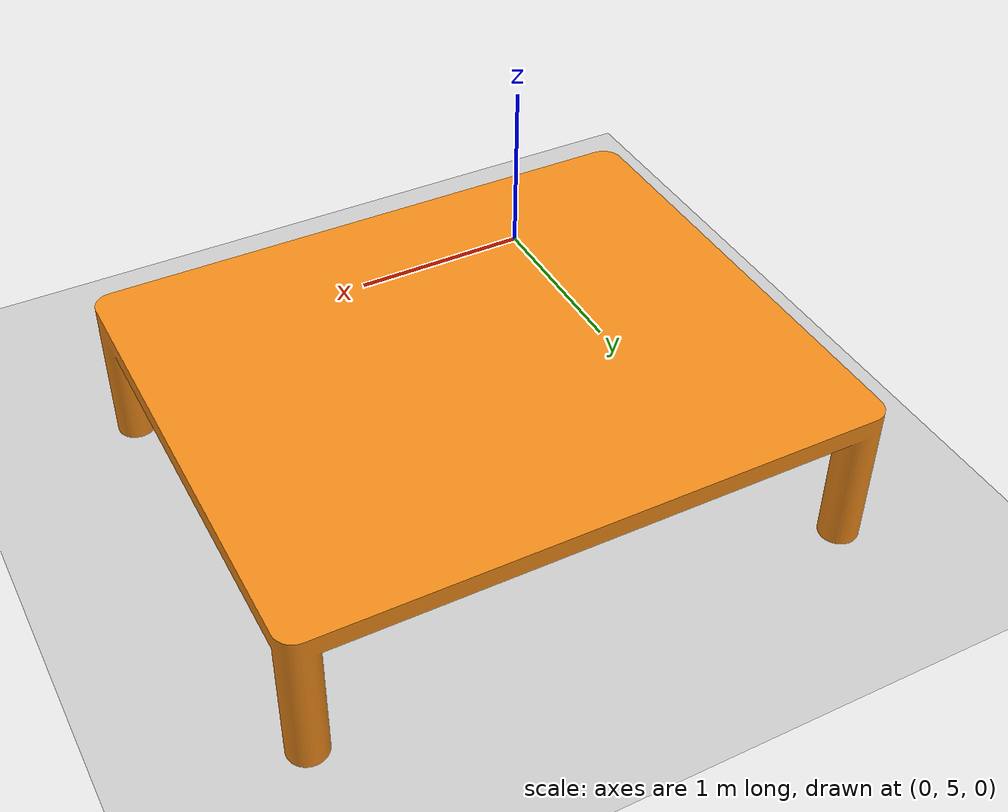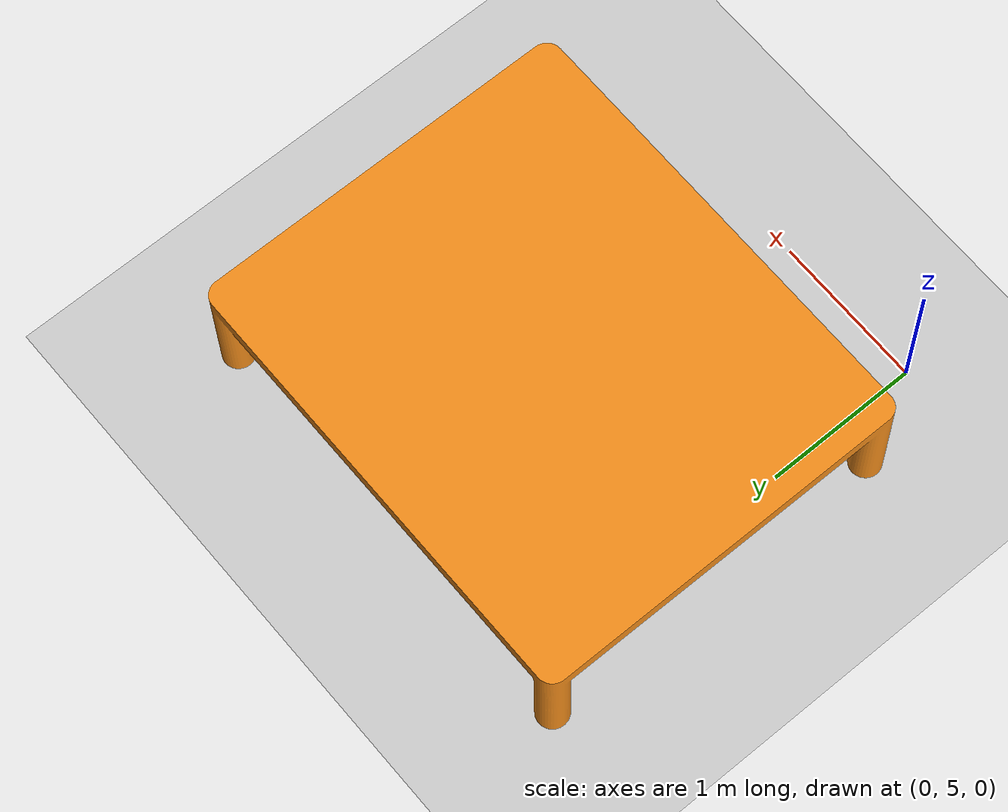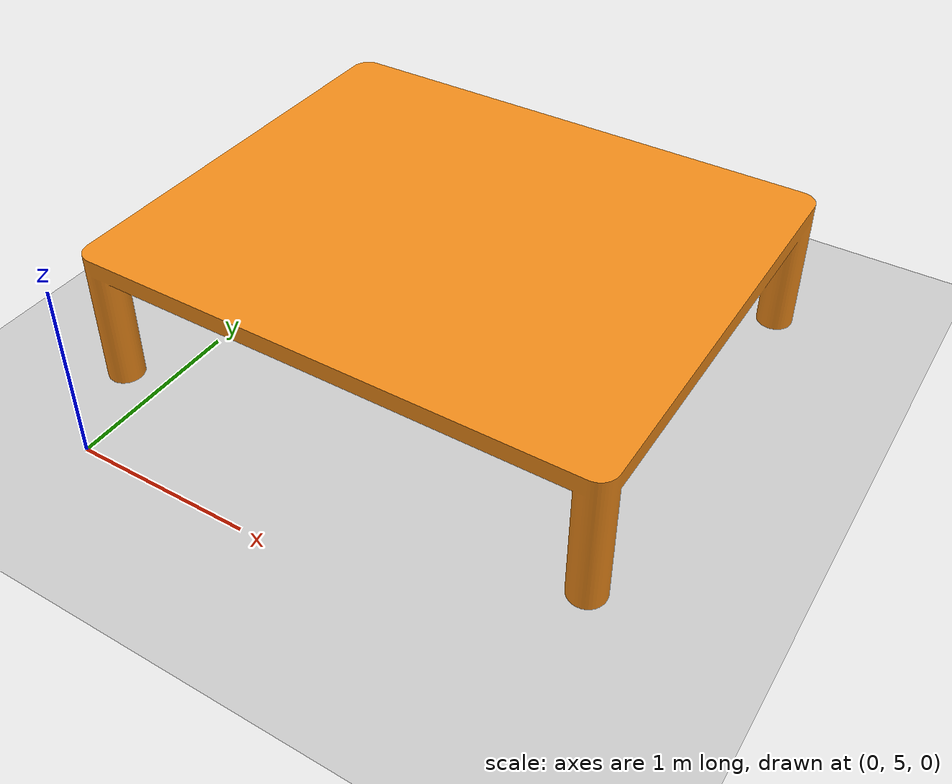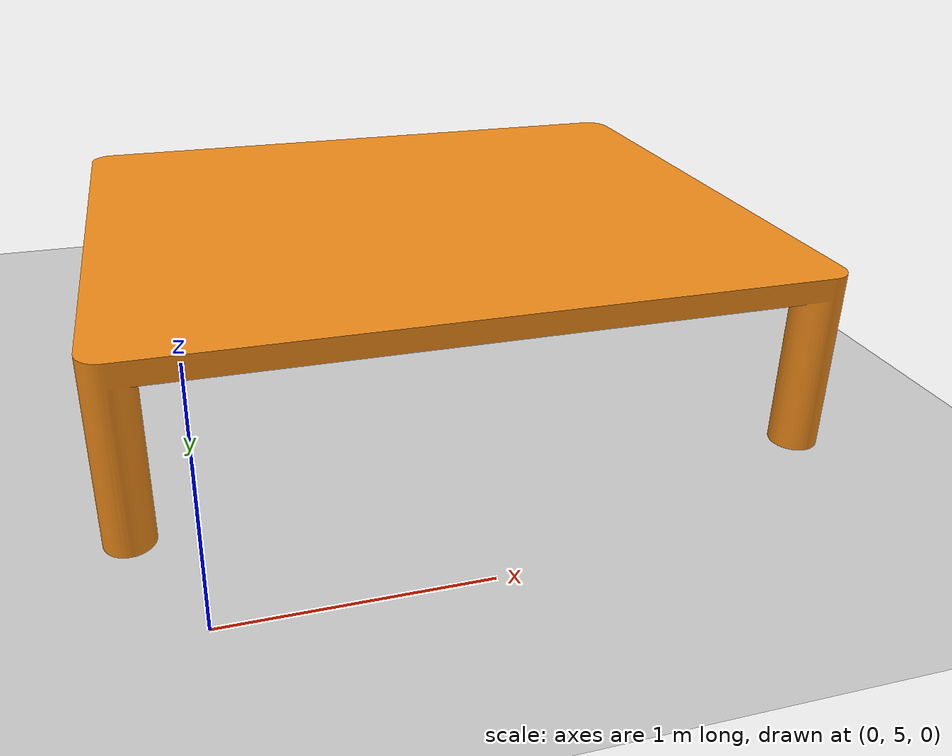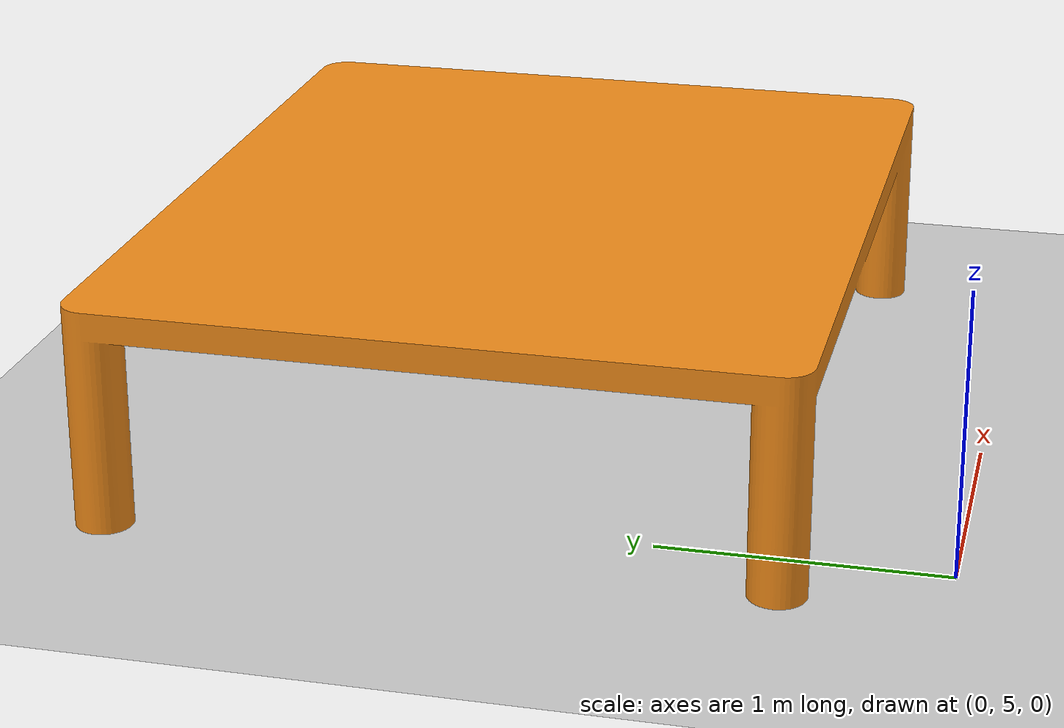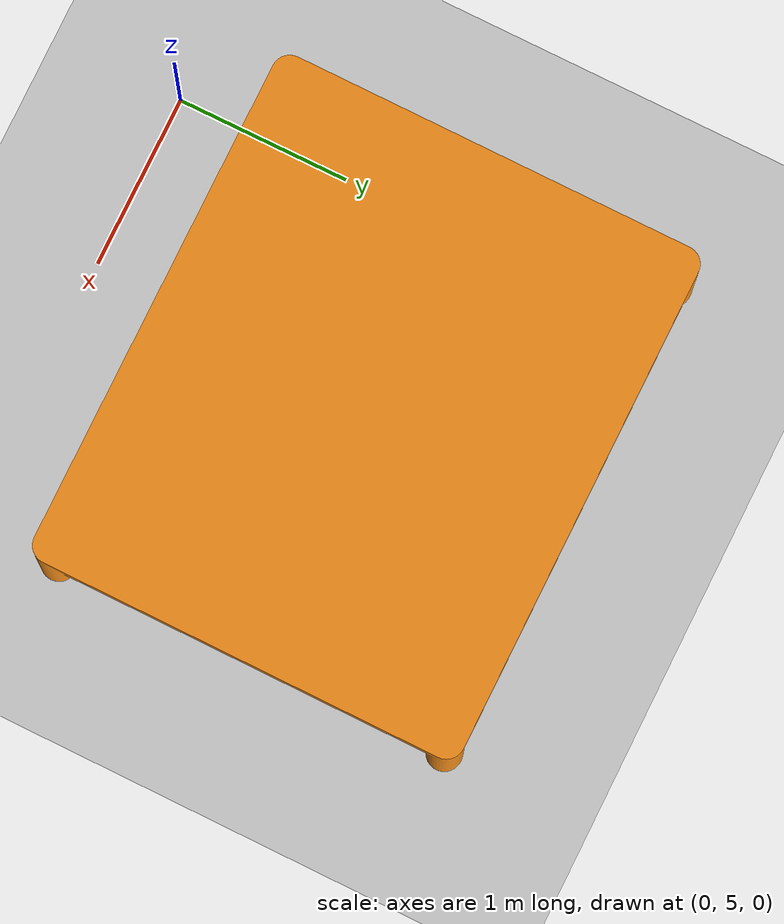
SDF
<sdf version="1.4">
 <world name="default">
  <light name="sun" type="directional">
   <pose>0 0 10 0 -0 0</pose>
   <diffuse>0.8 0.8 0.8 1</diffuse>
   <specular>0.2 0.2 0.2 1</specular>
   <attenuation>
    <range>1000</range>
    <constant>0.9</constant>
    <linear>0.01</linear>
    <quadratic>0.001</quadratic>
   </attenuation>
   <direction>-0.5 0.1 -0.9</direction>
  </light>
  <model name="ground_plane">
   <static>1</static>
   <link name="link">
    <collision name="collision">
     <geometry><plane><normal>0 0 1</normal><size>100 100</size></plane></geometry>
     <surface><friction><ode><mu>100</mu><mu2>50</mu2></ode></friction></surface>
    </collision>
    <visual name="visual">
     <cast_shadows>0</cast_shadows>
     <geometry><plane><normal>0 0 1</normal><size>100 100</size></plane></geometry>
     <material>
      <script><uri>file://media/materials/scripts/gazebo.material</uri><name>Gazebo/Grey</name></script>
     </material>
    </visual>
    <velocity_decay><linear>0</linear><angular>0</angular></velocity_decay>
   </link>
  </model>
  <physics type="ode">
   <max_step_size>0.001</max_step_size>
   <real_time_factor>1</real_time_factor>
   <real_time_update_rate>1000</real_time_update_rate>
   <gravity>0 0 -9.8</gravity>
  </physics>
  <scene><ambient>0.4 0.4 0.4 1</ambient><background>0.7 0.7 0.7 1</background><shadows>1</shadows></scene>
  <spherical_coordinates>
   <surface_model>EARTH_WGS84</surface_model>
   <latitude_deg>0</latitude_deg>
   <longitude_deg>0</longitude_deg>
   <elevation>0</elevation>
   <heading_deg>0</heading_deg>
  </spherical_coordinates>
  <model name="Part3">
   <link name="Part3">
    <inertial>
     <pose>1.5 -0.70814 1.25 0 -0 0</pose>
     <mass>133.86</mass>
     <inertia>
      <ixx>83.529</ixx>
      <ixy>0.00033768</ixy>
      <ixz>-0.000166552</ixz>
      <iyy>198.036</iyy>
      <iyz>0.000107991</iyz>
      <izz>119.865</izz>
     </inertia>
    </inertial>
    <collision name="Part3_collision">
     <pose>0 0 0 1.5708 -0 0</pose>
     <geometry><mesh><scale>1 1 1</scale><uri>/home/anand/new_ws/src/robo/meshes/Part3.STL</uri></mesh></geometry>
    </collision>
    <visual name="Part3_visual">
     <pose>0 0 0 1.5708 -0 0</pose>
     <geometry><mesh><scale>1 1 1</scale><uri>/home/anand/new_ws/src/robo/meshes/Part3.STL</uri></mesh></geometry>
     <material><script><name>Gazebo/Orange</name><uri>__default__</uri></script></material>
    </visual>
    <velocity_decay><linear>0</linear><angular>0</angular></velocity_decay>
   </link>
   <pose>-0.352719 5.44778 2e-06 -1.57081 -4e-06 -0.00205</pose>
   <static>0</static>
  </model>
 </world>
</sdf>
